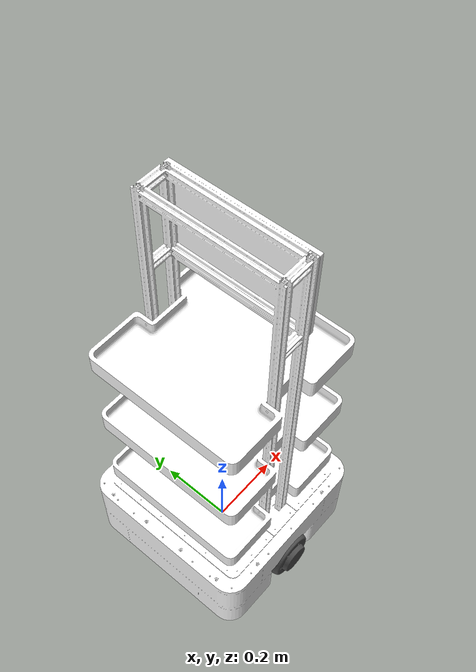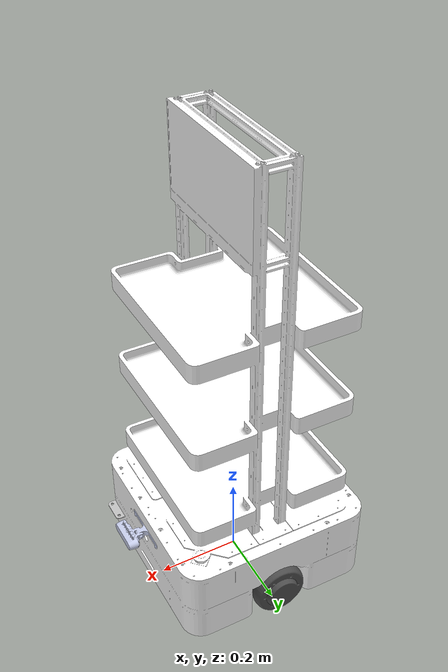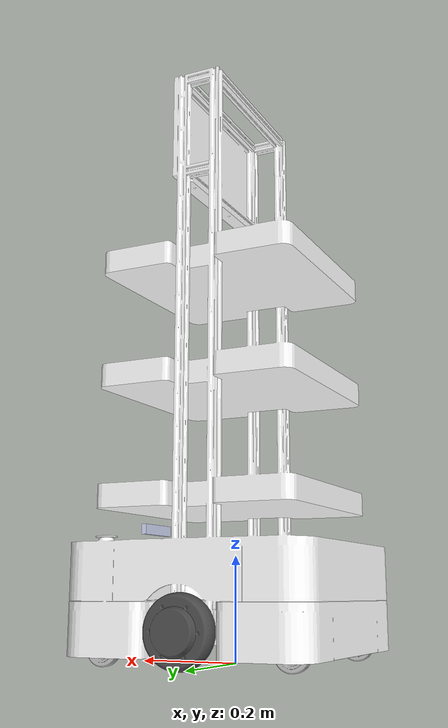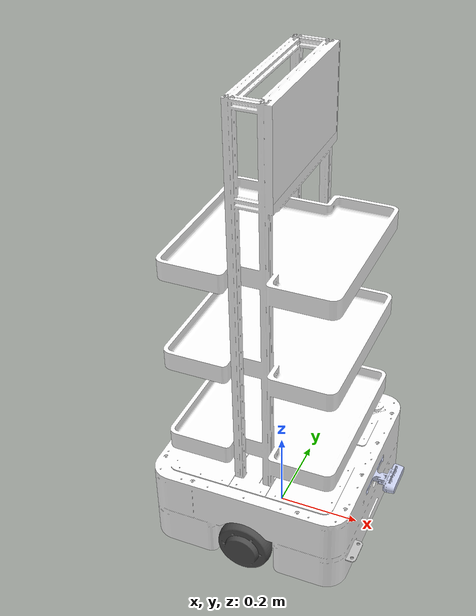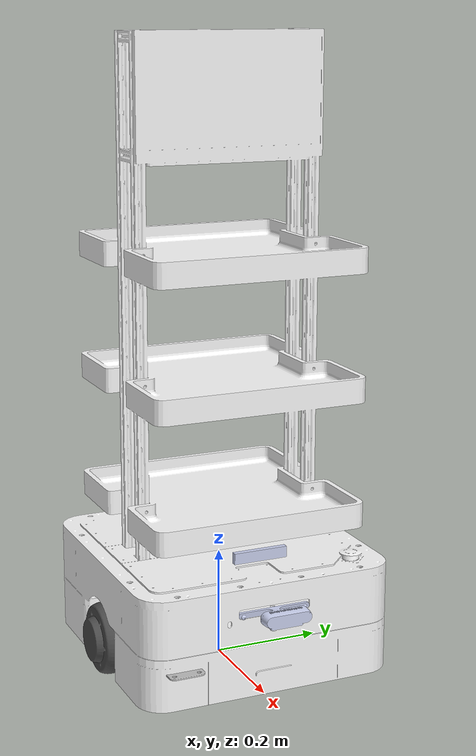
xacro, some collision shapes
<?xml version="1.0"?>
<!-- Originally created by SolidWorks to URDF Exporter, converted to xacro -->
<robot name="food_deli_description"
  xmlns:xacro="http://www.ros.org/wiki/xacro">

  <!-- ============================================================
       Inertia macros
       ============================================================ -->

  <xacro:macro name="box_inertia" params="m l w h xyz rpy">
    <inertial>
      <origin xyz="${xyz}" rpy="${rpy}"/>
      <mass value="${m}"/>
      <inertia ixx="${(1/12.0) * m * (h*h + l*l)}" ixy="0" ixz="0"
               iyy="${(1/12.0) * m * (w*w + l*l)}" iyz="0"
               izz="${(1/12.0) * m * (w*w + h*h)}"/>
    </inertial>
  </xacro:macro>

  <xacro:macro name="cylinder_inertia" params="m r h xyz rpy">
    <inertial>
      <origin xyz="${xyz}" rpy="${rpy}"/>
      <mass value="${m}"/>
      <inertia ixx="${(1/12.0) * m * (3*r*r + h*h)}" ixy="0" ixz="0"
               iyy="${(1/12.0) * m * (3*r*r + h*h)}" iyz="0"
               izz="${0.5 * m * r*r}"/>
    </inertial>
  </xacro:macro>

  <xacro:macro name="sphere_inertia" params="m r xyz rpy">
    <inertial>
      <origin xyz="${xyz}" rpy="${rpy}"/>
      <mass value="${m}"/>
      <inertia ixx="${(2/5.0) * m * r*r}" ixy="0" ixz="0"
               iyy="${(2/5.0) * m * r*r}" iyz="0"
               izz="${(2/5.0) * m * r*r}"/>
    </inertial>
  </xacro:macro>

  <!-- Wheel spinning about Y axis (swapped from cylinder_inertia which spins about Z) -->
  <xacro:macro name="wheel_inertia" params="m r h xyz rpy">
    <inertial>
      <origin xyz="${xyz}" rpy="${rpy}"/>
      <mass value="${m}"/>
      <inertia ixx="${(1/12.0) * m * (3*r*r + h*h)}" ixy="0" ixz="0"
               iyy="${0.5 * m * r*r}"                 iyz="0"
               izz="${(1/12.0) * m * (3*r*r + h*h)}"/>
    </inertial>
  </xacro:macro>

  <!-- ============================================================
       Links
       ============================================================ -->

  <link name="base_footprint"/>

  <joint name="base_footprint_joint" type="fixed">
    <parent link="base_footprint"/>
    <child link="base_link"/>
    <origin xyz="0 0 0.01" rpy="0 0 0"/>
  </joint>

  <link name="base_link">
    <xacro:box_inertia m="10.0" l="0.42" w="0.2" h="0.2"
                       xyz="0 0 0.11" rpy="0 0 0"/>
    <visual>
      <origin xyz="0 0 0.213" rpy="0 0 0"/>
      <geometry>
        <mesh filename="package://food_deli_description/meshes/base_link.STL"/>
      </geometry>
      <material name="">
        <color rgba="1 1 1 1"/>
      </material>
    </visual>
    <collision>
      <origin xyz="0 0 0.11" rpy="0 0 0"/>
      <geometry>
        <box size="0.42 0.42 0.2"/>
      </geometry>
    </collision>
  </link>

  <link name="right_wheel_link">
    <xacro:wheel_inertia m="1.5" r="0.0655" h="0.045"
                         xyz="0 0 0" rpy="0 0 0"/>
    <visual>
      <origin xyz="0 0 0" rpy="0 0 0"/>
      <geometry>
        <mesh filename="package://food_deli_description/meshes/right_wheel_link.STL"/>
      </geometry>
      <material name="">
        <color rgba="0.298039215686275 0.298039215686275 0.298039215686275 1"/>
      </material>
    </visual>
    <collision>
      <origin xyz="0 0 0" rpy="1.5708 0 0"/>
      <geometry>
        <cylinder radius="0.0655" length="0.045"/>
      </geometry>
    </collision>
  </link>

  <joint name="right_wheel_base_joint" type="continuous">
    <origin xyz="0.0 -0.225 0.0555" rpy="0 0 0"/>
    <parent link="base_link"/>
    <child link="right_wheel_link"/>
    <axis xyz="0 1 0"/>
  </joint>

  <link name="left_wheel_link">
    <xacro:wheel_inertia m="1.5" r="0.0655" h="0.045"
                         xyz="0 0 0" rpy="0 0 0"/>
    <visual>
      <origin xyz="0 0 0" rpy="0 0 0"/>
      <geometry>
        <mesh filename="package://food_deli_description/meshes/left_wheel_link.STL"/>
      </geometry>
      <material name="">
        <color rgba="0.298039215686275 0.298039215686275 0.298039215686275 1"/>
      </material>
    </visual>
    <collision>
      <origin xyz="0 0 0" rpy="1.5708 0 0"/>
      <geometry>
        <cylinder radius="0.0655" length="0.045"/>
      </geometry>
    </collision>
  </link>

  <joint name="left_wheel_base_joint" type="continuous">
    <origin xyz="0 0.225 0.0555" rpy="0 0 0"/>
    <parent link="base_link"/>
    <child link="left_wheel_link"/>
    <axis xyz="0 1 0"/>
  </joint>

  <link name="lidar_link">
    <xacro:box_inertia m="0.01" l="0.1" w="0.1" h="0.02"
                       xyz="0 0 0" rpy="0 0 0"/>
    <visual>
      <origin xyz="0 0 0" rpy="0 0 0"/>
      <geometry>
        <mesh filename="package://food_deli_description/meshes/lidar_link.STL"/>
      </geometry>
      <material name="">
        <color rgba="0.792156862745098 0.819607843137255 0.933333333333333 1"/>
      </material>
    </visual>
    <collision>
      <origin xyz="0 0 0" rpy="0 0 0"/>
      <geometry>
        <box size="0.01 0.1 0.02"/>
      </geometry>
    </collision>
  </link>

  <joint name="lidar_base_link" type="fixed">
    <origin xyz="0.178 0 0.2436" rpy="0 0 0"/>
    <parent link="base_link"/>
    <child link="lidar_link"/>
    <axis xyz="0 0 0"/>
  </joint>

  <link name="camera_link">
    <xacro:box_inertia m="0.01" l="0.05" w="0.03" h="0.03"
                       xyz="0 0 0" rpy="0 0 0"/>
    <visual>
      <origin xyz="0 0 0" rpy="0 0 0"/>
      <geometry>
        <mesh filename="package://food_deli_description/meshes/camera_link.STL"/>
      </geometry>
      <material name="">
        <color rgba="0.792156862745098 0.819607843137255 0.933333333333333 1"/>
      </material>
    </visual>
    <collision>
      <origin xyz="0 0 0" rpy="0 0 0"/>
      <geometry>
        <box size="0.05 0.03 0.03"/>
      </geometry>
    </collision>
  </link>

  <joint name="camera_base_joint" type="fixed">
    <origin xyz="0.29541 0.0175 0.168" rpy="0 0 0"/>
    <parent link="base_link"/>
    <child link="camera_link"/>
    <axis xyz="0 0 0"/>
  </joint>

  <link name="imu_link">
    <xacro:box_inertia m="0.01" l="0.01" w="0.01" h="0.01"
                       xyz="0 0 0" rpy="0 0 0"/>
    <visual>
      <origin xyz="0 0 0" rpy="0 0 0"/>
      <geometry>
        <mesh filename="package://food_deli_description/meshes/imu_link.STL"/>
      </geometry>
      <material name="">
        <color rgba="0.298039215686275 0.298039215686275 0.298039215686275 1"/>
      </material>
    </visual>
    <collision>
      <origin xyz="0 0 0" rpy="0 0 0"/>
      <geometry>
        <box size="0.02 0.02 0.01"/>
      </geometry>
    </collision>
  </link>

  <joint name="imu_base_joint" type="fixed">
    <origin xyz="0 0 0.1106" rpy="0 0 0"/>
    <parent link="base_link"/>
    <child link="imu_link"/>
    <axis xyz="0 0 0"/>
  </joint>

  <link name="caster1_link">
    <xacro:sphere_inertia m="0.107797455234629" r="0.0325"
                          xyz="0 0 0" rpy="0 0 0"/>
    <visual>
      <origin xyz="0 0 0" rpy="0 0 0"/>
      <geometry>
        <mesh filename="package://food_deli_description/meshes/caster1_link.STL"/>
      </geometry>
      <material name="">
        <color rgba="0.752941176470588 0.752941176470588 0.752941176470588 1"/>
      </material>
    </visual>
    <collision>
      <origin xyz="0 0 0" rpy="0 0 0"/>
      <geometry>
        <sphere radius="0.0325"/>
      </geometry>
    </collision>
  </link>

  <joint name="c1_b_joint" type="fixed">
    <origin xyz="-0.1845 -0.1559745 0.0225" rpy="0 0 0"/>
    <parent link="base_link"/>
    <child link="caster1_link"/>
    <axis xyz="0 0 0"/>
  </joint>

  <link name="caster2_link">
    <xacro:sphere_inertia m="0.107797455234629" r="0.0325"
                          xyz="0 0 0" rpy="0 0 0"/>
    <visual>
      <origin xyz="0 0 0" rpy="0 0 0"/>
      <geometry>
        <mesh filename="package://food_deli_description/meshes/caster2_link.STL"/>
      </geometry>
      <material name="">
        <color rgba="0.752941176470588 0.752941176470588 0.752941176470588 1"/>
      </material>
    </visual>
    <collision>
      <origin xyz="0 0 0" rpy="0 0 0"/>
      <geometry>
        <sphere radius="0.0325"/>
      </geometry>
    </collision>
  </link>

  <joint name="c2_b_joint" type="fixed">
    <origin xyz="-0.1845 0.18303 0.0225" rpy="0 0 0"/>
    <parent link="base_link"/>
    <child link="caster2_link"/>
    <axis xyz="0 0 0"/>
  </joint>

  <link name="caster3_link">
    <xacro:sphere_inertia m="0.107797455234629" r="0.0325"
                          xyz="0 0 0" rpy="0 0 0"/>
    <visual>
      <origin xyz="0 0 0" rpy="0 0 0"/>
      <geometry>
        <mesh filename="package://food_deli_description/meshes/caster3_link.STL"/>
      </geometry>
      <material name="">
        <color rgba="0.752941176470588 0.752941176470588 0.752941176470588 1"/>
      </material>
    </visual>
    <collision>
      <origin xyz="0 0 0" rpy="0 0 0"/>
      <geometry>
        <sphere radius="0.0325"/>
      </geometry>
    </collision>
  </link>

  <joint name="c3_b_joint" type="fixed">
    <origin xyz="0.1845 -0.15597 0.0225" rpy="0 0 0"/>
    <parent link="base_link"/>
    <child link="caster3_link"/>
    <axis xyz="0 0 0"/>
  </joint>

  <link name="caster4_link">
    <xacro:sphere_inertia m="0.107797455234629" r="0.0325"
                          xyz="0 0 0" rpy="0 0 0"/>
    <visual>
      <origin xyz="0 0 0" rpy="0 0 0"/>
      <geometry>
        <mesh filename="package://food_deli_description/meshes/caster4_link.STL"/>
      </geometry>
      <material name="">
        <color rgba="0.752941176470588 0.752941176470588 0.752941176470588 1"/>
      </material>
    </visual>
    <collision>
      <origin xyz="0 0 0" rpy="0 0 0"/>
      <geometry>
        <sphere radius="0.0325"/>
      </geometry>
    </collision>
  </link>

  <joint name="c4_b_joint" type="fixed">
    <origin xyz="0.1845 0.18303 0.0225" rpy="0 0 0"/>
    <parent link="base_link"/>
    <child link="caster4_link"/>
    <axis xyz="0 0 0"/>
  </joint>

  <!-- ============================================================
       Gazebo: wheel friction
       ============================================================ -->
  <gazebo reference="right_wheel_link">
    <mu1>1.0</mu1>
    <mu2>1.0</mu2>
    <kp>500000.0</kp>
    <kd>10.0</kd>
    <minDepth>0.001</minDepth>
    <maxVel>0.1</maxVel>
  </gazebo>
  <gazebo reference="left_wheel_link">
    <mu1>1.0</mu1>
    <mu2>1.0</mu2>
    <kp>500000.0</kp>
    <kd>10.0</kd>
    <minDepth>0.001</minDepth>
    <maxVel>0.1</maxVel>
  </gazebo>

  <!-- Gazebo: caster friction (low to allow free rolling) -->
  <gazebo reference="caster1_link">
    <mu1>0.01</mu1><mu2>0.01</mu2><kp>100000.0</kp><kd>100.0</kd>
  </gazebo>
  <gazebo reference="caster2_link">
    <mu1>0.01</mu1><mu2>0.01</mu2><kp>100000.0</kp><kd>100.0</kd>
  </gazebo>
  <gazebo reference="caster3_link">
    <mu1>0.01</mu1><mu2>0.01</mu2><kp>100000.0</kp><kd>100.0</kd>
  </gazebo>
  <gazebo reference="caster4_link">
    <mu1>0.01</mu1><mu2>0.01</mu2><kp>100000.0</kp><kd>100.0</kd>
  </gazebo>

  <!-- ============================================================
       Gazebo: differential drive plugin
       ============================================================ -->
  <gazebo>
    <plugin filename="libgazebo_ros_diff_drive.so" name="diff_drive_controller">
      <update_rate>50</update_rate>
      <left_joint>left_wheel_base_joint</left_joint>
      <right_joint>right_wheel_base_joint</right_joint>
      <wheel_separation>0.45</wheel_separation>
      <wheel_diameter>0.131</wheel_diameter>
      <max_wheel_torque>20</max_wheel_torque>
      <max_wheel_acceleration>0.8</max_wheel_acceleration>
      <publish_odom>true</publish_odom>
      <publish_odom_tf>true</publish_odom_tf>
      <publish_wheel_tf>true</publish_wheel_tf>
      <odometry_topic>odom</odometry_topic>
      <odometry_frame>odom</odometry_frame>
      <robot_base_frame>base_footprint</robot_base_frame>
    </plugin>
  </gazebo>

  <!-- ============================================================
       Gazebo: LiDAR
       ============================================================ -->
  <gazebo reference="lidar_link">
    <sensor name="lidar" type="ray">
      <pose>0 0 0 0 0 0</pose>
      <visualize>true</visualize>
      <update_rate>8</update_rate>
      <ray>
        <scan>
          <horizontal>
            <samples>1083</samples>
            <resolution>1</resolution>
            <min_angle>-3.1241390705108643</min_angle>
            <max_angle>3.1415927410125732</max_angle>
          </horizontal>
        </scan>
        <range>
          <min>0.1</min>
          <max>12</max>
        </range>
      </ray>
      <plugin name="lidar" filename="libgazebo_ros_ray_sensor.so">
        <ros>
          <remapping>~/out:=scan</remapping>
        </ros>
        <output_type>sensor_msgs/LaserScan</output_type>
        <topic>scan</topic>
        <frame_name>lidar_link</frame_name>
        <transport>ros</transport>
      </plugin>
    </sensor>
  </gazebo>

</robot>
